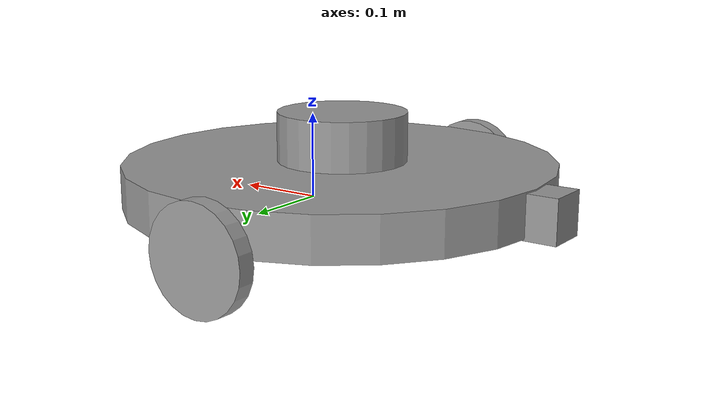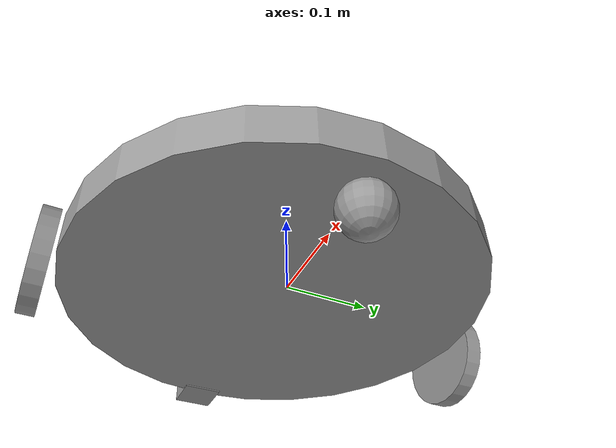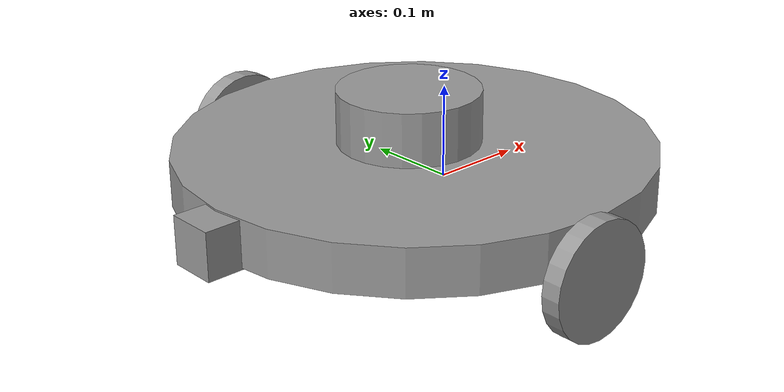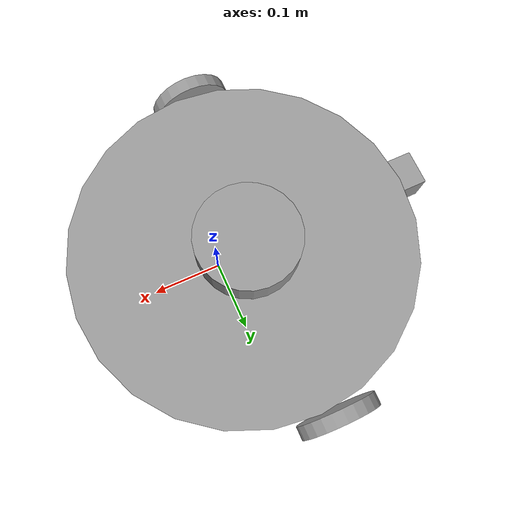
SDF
<?xml version='1.0'?>
<sdf version='1.5'>
  <model name='two_wheel_robot'>
    <link name='link_1'>
      <inertial>
        <mass>5</mass>
        <inertia>
          <ixx>0.0791667</ixx>
          <ixy>0</ixy>
          <ixz>0</ixz>
          <iyy>0.0791667</iyy>
          <iyz>0</iyz>
          <izz>0.15625</izz>
        </inertia>
        <pose>0 0 0 0 -0 0</pose>
      </inertial>
      <pose>-0.04001 0.000812 0.026251 0 -0 0</pose>
      <gravity>1</gravity>
      <self_collide>0</self_collide>
      <kinematic>0</kinematic>
      <enable_wind>0</enable_wind>
      <visual name='visual'>
        <pose>0 0 0 0 -0 0</pose>
        <geometry>
          <cylinder>
            <radius>0.25</radius>
            <length>0.05</length>
          </cylinder>
        </geometry>
        <material>
          <lighting>1</lighting>
          <script>
            <uri>file://media/materials/scripts/gazebo.material</uri>
            <name>Gazebo/Grey</name>
          </script>
          <shader type='pixel'>
            <normal_map>__default__</normal_map>
          </shader>
          <ambient>0.3 0.3 0.3 1</ambient>
          <diffuse>0.7 0.7 0.7 1</diffuse>
          <specular>0.01 0.01 0.01 1</specular>
          <emissive>0 0 0 1</emissive>
        </material>
        <transparency>0</transparency>
        <cast_shadows>1</cast_shadows>
      </visual>
      <collision name='collision'>
        <laser_retro>0</laser_retro>
        <max_contacts>10</max_contacts>
        <pose>0 0 0 0 -0 0</pose>
        <geometry>
          <cylinder>
            <radius>0.25</radius>
            <length>0.05</length>
          </cylinder>
        </geometry>
        <surface>
          <friction>
            <ode>
              <mu>1</mu>
              <mu2>1</mu2>
              <fdir1>0 0 0</fdir1>
              <slip1>0</slip1>
              <slip2>0</slip2>
            </ode>
            <torsional>
              <coefficient>1</coefficient>
              <patch_radius>0</patch_radius>
              <surface_radius>0</surface_radius>
              <use_patch_radius>1</use_patch_radius>
              <ode>
                <slip>0</slip>
              </ode>
            </torsional>
          </friction>
          <bounce>
            <restitution_coefficient>0</restitution_coefficient>
            <threshold>1e+06</threshold>
          </bounce>
          <contact>
            <collide_without_contact>0</collide_without_contact>
            <collide_without_contact_bitmask>1</collide_without_contact_bitmask>
            <collide_bitmask>1</collide_bitmask>
            <ode>
              <soft_cfm>0</soft_cfm>
              <soft_erp>0.2</soft_erp>
              <kp>1e+13</kp>
              <kd>1</kd>
              <max_vel>0.01</max_vel>
              <min_depth>0</min_depth>
            </ode>
            <bullet>
              <split_impulse>1</split_impulse>
              <split_impulse_penetration_threshold>-0.01</split_impulse_penetration_threshold>
              <soft_cfm>0</soft_cfm>
              <soft_erp>0.2</soft_erp>
              <kp>1e+13</kp>
              <kd>1</kd>
            </bullet>
          </contact>
        </surface>
      </collision>
    </link>
    <link name='link_2'>
      <inertial>
        <mass>1</mass>
        <inertia>
          <ixx>0.145833</ixx>
          <ixy>0</ixy>
          <ixz>0</ixz>
          <iyy>0.145833</iyy>
          <iyz>0</iyz>
          <izz>0.125</izz>
        </inertia>
        <pose>0 0 0 0 -0 0</pose>
      </inertial>
      <pose>-0.066257 0.264759 0.00125 1.5708 -0 0</pose>
      <gravity>1</gravity>
      <self_collide>0</self_collide>
      <kinematic>0</kinematic>
      <enable_wind>0</enable_wind>
      <visual name='visual'>
        <pose>0 0 0 0 -0 0</pose>
        <geometry>
          <cylinder>
            <radius>0.06</radius>
            <length>0.02</length>
          </cylinder>
        </geometry>
        <material>
          <lighting>1</lighting>
          <script>
            <uri>file://media/materials/scripts/gazebo.material</uri>
            <name>Gazebo/Grey</name>
          </script>
          <shader type='pixel'>
            <normal_map>__default__</normal_map>
          </shader>
          <ambient>0.3 0.3 0.3 1</ambient>
          <diffuse>0.7 0.7 0.7 1</diffuse>
          <specular>0.01 0.01 0.01 1</specular>
          <emissive>0 0 0 1</emissive>
        </material>
        <transparency>0</transparency>
        <cast_shadows>1</cast_shadows>
      </visual>
      <collision name='collision'>
        <laser_retro>0</laser_retro>
        <max_contacts>10</max_contacts>
        <pose>0 0 0 0 -0 0</pose>
        <geometry>
          <cylinder>
            <radius>0.06</radius>
            <length>0.02</length>
          </cylinder>
        </geometry>
        <surface>
          <friction>
            <ode>
              <mu>1</mu>
              <mu2>1</mu2>
              <fdir1>0 0 0</fdir1>
              <slip1>0</slip1>
              <slip2>0</slip2>
            </ode>
            <torsional>
              <coefficient>1</coefficient>
              <patch_radius>0</patch_radius>
              <surface_radius>0</surface_radius>
              <use_patch_radius>1</use_patch_radius>
              <ode>
                <slip>0</slip>
              </ode>
            </torsional>
          </friction>
          <bounce>
            <restitution_coefficient>0</restitution_coefficient>
            <threshold>1e+06</threshold>
          </bounce>
          <contact>
            <collide_without_contact>0</collide_without_contact>
            <collide_without_contact_bitmask>1</collide_without_contact_bitmask>
            <collide_bitmask>1</collide_bitmask>
            <ode>
              <soft_cfm>0</soft_cfm>
              <soft_erp>0.2</soft_erp>
              <kp>1e+13</kp>
              <kd>1</kd>
              <max_vel>0.01</max_vel>
              <min_depth>0</min_depth>
            </ode>
            <bullet>
              <split_impulse>1</split_impulse>
              <split_impulse_penetration_threshold>-0.01</split_impulse_penetration_threshold>
              <soft_cfm>0</soft_cfm>
              <soft_erp>0.2</soft_erp>
              <kp>1e+13</kp>
              <kd>1</kd>
            </bullet>
          </contact>
        </surface>
      </collision>
    </link>
    <link name='link_2_clone'>
      <inertial>
        <mass>1</mass>
        <inertia>
          <ixx>0.145833</ixx>
          <ixy>0</ixy>
          <ixz>0</ixz>
          <iyy>0.145833</iyy>
          <iyz>0</iyz>
          <izz>0.125</izz>
        </inertia>
        <pose>0 0 0 0 -0 0</pose>
      </inertial>
      <pose>-0.066257 -0.263385 0.00125 1.5708 -0 0</pose>
      <gravity>1</gravity>
      <self_collide>0</self_collide>
      <kinematic>0</kinematic>
      <enable_wind>0</enable_wind>
      <visual name='visual'>
        <pose>0 0 0 0 -0 0</pose>
        <geometry>
          <cylinder>
            <radius>0.06</radius>
            <length>0.02</length>
          </cylinder>
        </geometry>
        <material>
          <lighting>1</lighting>
          <script>
            <uri>file://media/materials/scripts/gazebo.material</uri>
            <name>Gazebo/Grey</name>
          </script>
          <shader type='pixel'>
            <normal_map>__default__</normal_map>
          </shader>
          <ambient>0.3 0.3 0.3 1</ambient>
          <diffuse>0.7 0.7 0.7 1</diffuse>
          <specular>0.01 0.01 0.01 1</specular>
          <emissive>0 0 0 1</emissive>
        </material>
        <transparency>0</transparency>
        <cast_shadows>1</cast_shadows>
      </visual>
      <collision name='collision'>
        <laser_retro>0</laser_retro>
        <max_contacts>10</max_contacts>
        <pose>0 0 0 0 -0 0</pose>
        <geometry>
          <cylinder>
            <radius>0.06</radius>
            <length>0.02</length>
          </cylinder>
        </geometry>
        <surface>
          <friction>
            <ode>
              <mu>1</mu>
              <mu2>1</mu2>
              <fdir1>0 0 0</fdir1>
              <slip1>0</slip1>
              <slip2>0</slip2>
            </ode>
            <torsional>
              <coefficient>1</coefficient>
              <patch_radius>0</patch_radius>
              <surface_radius>0</surface_radius>
              <use_patch_radius>1</use_patch_radius>
              <ode>
                <slip>0</slip>
              </ode>
            </torsional>
          </friction>
          <bounce>
            <restitution_coefficient>0</restitution_coefficient>
            <threshold>1e+06</threshold>
          </bounce>
          <contact>
            <collide_without_contact>0</collide_without_contact>
            <collide_without_contact_bitmask>1</collide_without_contact_bitmask>
            <collide_bitmask>1</collide_bitmask>
            <ode>
              <soft_cfm>0</soft_cfm>
              <soft_erp>0.2</soft_erp>
              <kp>1e+13</kp>
              <kd>1</kd>
              <max_vel>0.01</max_vel>
              <min_depth>0</min_depth>
            </ode>
            <bullet>
              <split_impulse>1</split_impulse>
              <split_impulse_penetration_threshold>-0.01</split_impulse_penetration_threshold>
              <soft_cfm>0</soft_cfm>
              <soft_erp>0.2</soft_erp>
              <kp>1e+13</kp>
              <kd>1</kd>
            </bullet>
          </contact>
        </surface>
      </collision>
    </link>
    <link name='link_3'>
      <inertial>
        <mass>1</mass>
        <inertia>
          <ixx>0.1</ixx>
          <ixy>0</ixy>
          <ixz>0</ixz>
          <iyy>0.1</iyy>
          <iyz>0</iyz>
          <izz>0.1</izz>
        </inertia>
        <pose>0 0 0 0 -0 0</pose>
      </inertial>
      <pose>0.172524 -0.002185 -0.02875 0 -0 0</pose>
      <gravity>1</gravity>
      <self_collide>0</self_collide>
      <kinematic>0</kinematic>
      <enable_wind>0</enable_wind>
      <visual name='visual'>
        <pose>0 0 0 0 -0 0</pose>
        <geometry>
          <sphere>
            <radius>0.03</radius>
          </sphere>
        </geometry>
        <material>
          <lighting>1</lighting>
          <script>
            <uri>file://media/materials/scripts/gazebo.material</uri>
            <name>Gazebo/Grey</name>
          </script>
          <shader type='pixel'>
            <normal_map>__default__</normal_map>
          </shader>
          <ambient>0.3 0.3 0.3 1</ambient>
          <diffuse>0.7 0.7 0.7 1</diffuse>
          <specular>0.01 0.01 0.01 1</specular>
          <emissive>0 0 0 1</emissive>
        </material>
        <transparency>0</transparency>
        <cast_shadows>1</cast_shadows>
      </visual>
      <collision name='collision'>
        <laser_retro>0</laser_retro>
        <max_contacts>10</max_contacts>
        <pose>0 0 0 0 -0 0</pose>
        <geometry>
          <sphere>
            <radius>0.03</radius>
          </sphere>
        </geometry>
        <surface>
          <friction>
            <ode>
              <mu>1</mu>
              <mu2>1</mu2>
              <fdir1>0 0 0</fdir1>
              <slip1>0</slip1>
              <slip2>0</slip2>
            </ode>
            <torsional>
              <coefficient>1</coefficient>
              <patch_radius>0</patch_radius>
              <surface_radius>0</surface_radius>
              <use_patch_radius>1</use_patch_radius>
              <ode>
                <slip>0</slip>
              </ode>
            </torsional>
          </friction>
          <bounce>
            <restitution_coefficient>0</restitution_coefficient>
            <threshold>1e+06</threshold>
          </bounce>
          <contact>
            <collide_without_contact>0</collide_without_contact>
            <collide_without_contact_bitmask>1</collide_without_contact_bitmask>
            <collide_bitmask>1</collide_bitmask>
            <ode>
              <soft_cfm>0</soft_cfm>
              <soft_erp>0.2</soft_erp>
              <kp>1e+13</kp>
              <kd>1</kd>
              <max_vel>0.01</max_vel>
              <min_depth>0</min_depth>
            </ode>
            <bullet>
              <split_impulse>1</split_impulse>
              <split_impulse_penetration_threshold>-0.01</split_impulse_penetration_threshold>
              <soft_cfm>0</soft_cfm>
              <soft_erp>0.2</soft_erp>
              <kp>1e+13</kp>
              <kd>1</kd>
            </bullet>
          </contact>
        </surface>
      </collision>
    </link>
    <link name='link_4'>
      <inertial>
        <mass>1</mass>
        <inertia>
          <ixx>0.145833</ixx>
          <ixy>0</ixy>
          <ixz>0</ixz>
          <iyy>0.145833</iyy>
          <iyz>0</iyz>
          <izz>0.125</izz>
        </inertia>
        <pose>0 0 0 0 -0 0</pose>
      </inertial>
      <pose>-0.045629 0.004041 0.078093 1e-06 -8e-06 -0.054438</pose>
      <gravity>1</gravity>
      <self_collide>0</self_collide>
      <kinematic>0</kinematic>
      <enable_wind>0</enable_wind>
      <visual name='visual'>
        <pose>0 0 0 0 -0 0</pose>
        <geometry>
          <cylinder>
            <radius>0.075</radius>
            <length>0.06</length>
          </cylinder>
        </geometry>
        <material>
          <lighting>1</lighting>
          <script>
            <uri>file://media/materials/scripts/gazebo.material</uri>
            <name>Gazebo/Grey</name>
          </script>
          <shader type='pixel'>
            <normal_map>__default__</normal_map>
          </shader>
          <ambient>0.3 0.3 0.3 1</ambient>
          <diffuse>0.7 0.7 0.7 1</diffuse>
          <specular>0.01 0.01 0.01 1</specular>
          <emissive>0 0 0 1</emissive>
        </material>
        <transparency>0</transparency>
        <cast_shadows>1</cast_shadows>
      </visual>
      <collision name='collision'>
        <laser_retro>0</laser_retro>
        <max_contacts>10</max_contacts>
        <pose>0 0 0 0 -0 0</pose>
        <geometry>
          <cylinder>
            <radius>0.075</radius>
            <length>0.06</length>
          </cylinder>
        </geometry>
        <surface>
          <friction>
            <ode>
              <mu>1</mu>
              <mu2>1</mu2>
              <fdir1>0 0 0</fdir1>
              <slip1>0</slip1>
              <slip2>0</slip2>
            </ode>
            <torsional>
              <coefficient>1</coefficient>
              <patch_radius>0</patch_radius>
              <surface_radius>0</surface_radius>
              <use_patch_radius>1</use_patch_radius>
              <ode>
                <slip>0</slip>
              </ode>
            </torsional>
          </friction>
          <bounce>
            <restitution_coefficient>0</restitution_coefficient>
            <threshold>1e+06</threshold>
          </bounce>
          <contact>
            <collide_without_contact>0</collide_without_contact>
            <collide_without_contact_bitmask>1</collide_without_contact_bitmask>
            <collide_bitmask>1</collide_bitmask>
            <ode>
              <soft_cfm>0</soft_cfm>
              <soft_erp>0.2</soft_erp>
              <kp>1e+13</kp>
              <kd>1</kd>
              <max_vel>0.01</max_vel>
              <min_depth>0</min_depth>
            </ode>
            <bullet>
              <split_impulse>1</split_impulse>
              <split_impulse_penetration_threshold>-0.01</split_impulse_penetration_threshold>
              <soft_cfm>0</soft_cfm>
              <soft_erp>0.2</soft_erp>
              <kp>1e+13</kp>
              <kd>1</kd>
            </bullet>
          </contact>
        </surface>
      </collision>
    </link>
    <link name='link_6'>
      <inertial>
        <mass>1</mass>
        <inertia>
          <ixx>0.166667</ixx>
          <ixy>0</ixy>
          <ixz>0</ixz>
          <iyy>0.166667</iyy>
          <iyz>0</iyz>
          <izz>0.166667</izz>
        </inertia>
        <pose>0 0 0 0 -0 0</pose>
      </inertial>
      <pose>-0.29806 -0.005751 0.024534 3e-06 -0 3.14157</pose>
      <gravity>1</gravity>
      <self_collide>0</self_collide>
      <kinematic>0</kinematic>
      <enable_wind>0</enable_wind>
      <visual name='visual'>
        <pose>0 0 0 0 -0 0</pose>
        <geometry>
          <box>
            <size>0.05 0.05 0.05</size>
          </box>
        </geometry>
        <material>
          <lighting>1</lighting>
          <script>
            <uri>file://media/materials/scripts/gazebo.material</uri>
            <name>Gazebo/Grey</name>
          </script>
          <shader type='pixel'>
            <normal_map>__default__</normal_map>
          </shader>
          <ambient>0.3 0.3 0.3 1</ambient>
          <diffuse>0.7 0.7 0.7 1</diffuse>
          <specular>0.01 0.01 0.01 1</specular>
          <emissive>0 0 0 1</emissive>
        </material>
        <transparency>0</transparency>
        <cast_shadows>1</cast_shadows>
      </visual>
      <collision name='collision'>
        <laser_retro>0</laser_retro>
        <max_contacts>10</max_contacts>
        <pose>0 0 0 0 -0 0</pose>
        <geometry>
          <box>
            <size>0.05 0.05 0.05</size>
          </box>
        </geometry>
        <surface>
          <friction>
            <ode>
              <mu>1</mu>
              <mu2>1</mu2>
              <fdir1>0 0 0</fdir1>
              <slip1>0</slip1>
              <slip2>0</slip2>
            </ode>
            <torsional>
              <coefficient>1</coefficient>
              <patch_radius>0</patch_radius>
              <surface_radius>0</surface_radius>
              <use_patch_radius>1</use_patch_radius>
              <ode>
                <slip>0</slip>
              </ode>
            </torsional>
          </friction>
          <bounce>
            <restitution_coefficient>0</restitution_coefficient>
            <threshold>1e+06</threshold>
          </bounce>
          <contact>
            <collide_without_contact>0</collide_without_contact>
            <collide_without_contact_bitmask>1</collide_without_contact_bitmask>
            <collide_bitmask>1</collide_bitmask>
            <ode>
              <soft_cfm>0</soft_cfm>
              <soft_erp>0.2</soft_erp>
              <kp>1e+13</kp>
              <kd>1</kd>
              <max_vel>0.01</max_vel>
              <min_depth>0</min_depth>
            </ode>
            <bullet>
              <split_impulse>1</split_impulse>
              <split_impulse_penetration_threshold>-0.01</split_impulse_penetration_threshold>
              <soft_cfm>0</soft_cfm>
              <soft_erp>0.2</soft_erp>
              <kp>1e+13</kp>
              <kd>1</kd>
            </bullet>
          </contact>
        </surface>
      </collision>
    </link>
    <joint name='link_1_right_joint_0' type='revolute'>
      <parent>link_1</parent>
      <child>link_2</child>
      <pose>0 0 0 0 -0 0</pose>
      <axis>
        <xyz>0 0 1</xyz>
        <limit>
          <lower>-1.79769e+308</lower>
          <upper>1.79769e+308</upper>
          <effort>-1</effort>
          <velocity>-1</velocity>
        </limit>
        <dynamics>
          <spring_reference>0</spring_reference>
          <spring_stiffness>0</spring_stiffness>
          <damping>0</damping>
          <friction>0</friction>
        </dynamics>
      </axis>
      <physics>
        <ode>
          <limit>
            <cfm>0</cfm>
            <erp>0.2</erp>
          </limit>
          <suspension>
            <cfm>0</cfm>
            <erp>0.2</erp>
          </suspension>
        </ode>
      </physics>
    </joint>
    <joint name='link_1_left_joint_1' type='revolute'>
      <parent>link_1</parent>
      <child>link_2_clone</child>
      <pose>0 0 0 0 -0 0</pose>
      <axis>
        <xyz>0 0 1</xyz>
        <limit>
          <lower>-1.79769e+308</lower>
          <upper>1.79769e+308</upper>
          <effort>-1</effort>
          <velocity>-1</velocity>
        </limit>
        <dynamics>
          <spring_reference>0</spring_reference>
          <spring_stiffness>0</spring_stiffness>
          <damping>0</damping>
          <friction>0</friction>
        </dynamics>
      </axis>
      <physics>
        <ode>
          <limit>
            <cfm>0</cfm>
            <erp>0.2</erp>
          </limit>
          <suspension>
            <cfm>0</cfm>
            <erp>0.2</erp>
          </suspension>
        </ode>
      </physics>
    </joint>
    <joint name='link_1_caster_joint_2' type='fixed'>
      <parent>link_1</parent>
      <child>link_3</child>
      <pose>0 0 0 0 -0 0</pose>
      <physics>
        <ode>
          <limit>
            <cfm>0</cfm>
            <erp>0.2</erp>
          </limit>
          <suspension>
            <cfm>0</cfm>
            <erp>0.2</erp>
          </suspension>
        </ode>
      </physics>
    </joint>
    <joint name='link_1_lidar_joint_3' type='fixed'>
      <parent>link_1</parent>
      <child>link_4</child>
      <pose>0 0 0 0 -0 0</pose>
      <physics>
        <ode>
          <limit>
            <cfm>0</cfm>
            <erp>0.2</erp>
          </limit>
          <suspension>
            <cfm>0</cfm>
            <erp>0.2</erp>
          </suspension>
        </ode>
      </physics>
    </joint>
    <joint name='link_1_camera_joint_4' type='fixed'>
      <parent>link_1</parent>
      <child>link_6</child>
      <pose>0 0 0 0 -0 0</pose>
      <physics>
        <ode>
          <limit>
            <cfm>0</cfm>
            <erp>0.2</erp>
          </limit>
          <suspension>
            <cfm>0</cfm>
            <erp>0.2</erp>
          </suspension>
        </ode>
      </physics>
    </joint>
    <static>0</static>
    <allow_auto_disable>1</allow_auto_disable>
  </model>
</sdf>
